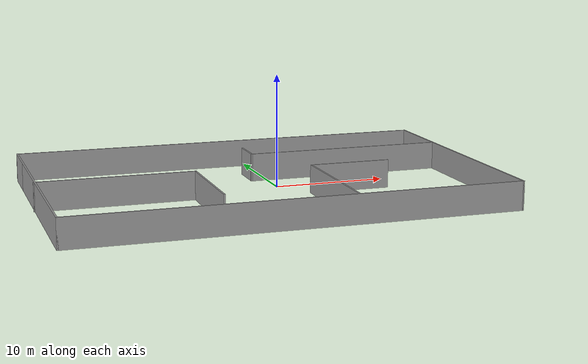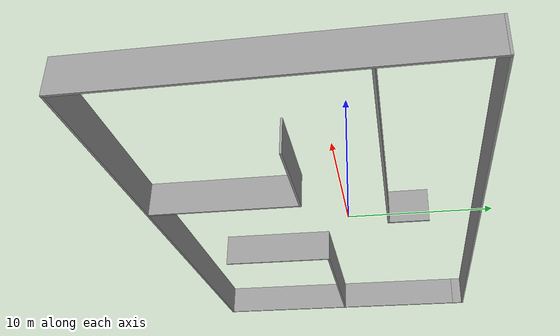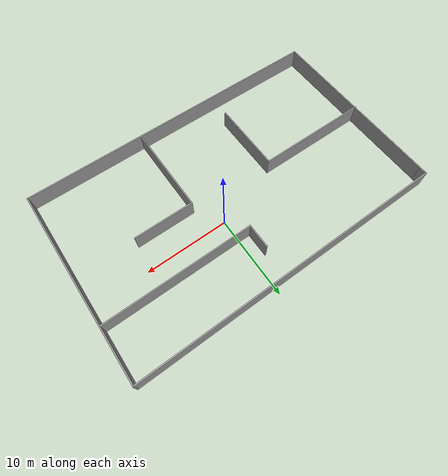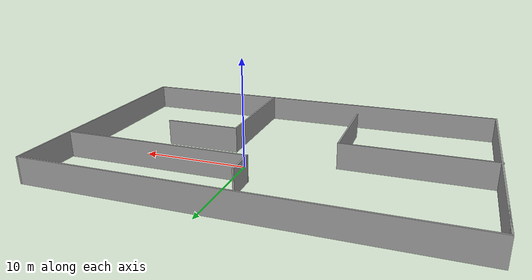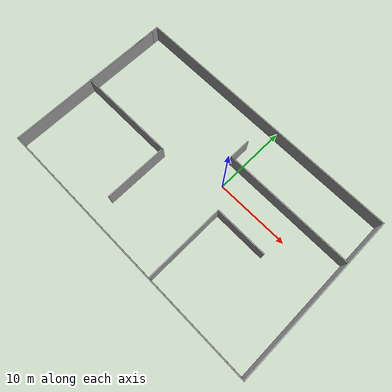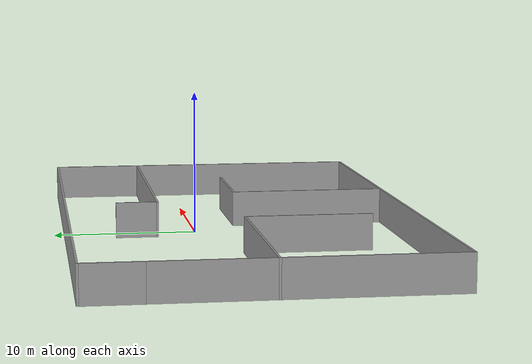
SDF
<?xml version='1.0'?>
<sdf version='1.7'>
  <model name='room'>
    <pose>-2.5625 -2.42015 0 0 -0 0</pose>
    <link name='Wall_0'>
      <collision name='Wall_0_Collision'>
        <geometry>
          <box>
            <size>22.5 0.15 2.5</size>
          </box>
        </geometry>
        <pose>0 0 1.25 0 -0 0</pose>
      </collision>
      <visual name='Wall_0_Visual'>
        <pose>0 0 1.25 0 -0 0</pose>
        <geometry>
          <box>
            <size>22.5 0.15 2.5</size>
          </box>
        </geometry>
        <material>
          <script>
            <uri>file://media/materials/scripts/gazebo.material</uri>
            <name>Gazebo/Grey</name>
          </script>
          <ambient>1 1 1 1</ambient>
        </material>
        <meta>
          <layer>0</layer>
        </meta>
      </visual>
      <pose>-19.0146 -0.5 0 0 -0 -1.5708</pose>
    </link>
    <link name='Wall_1'>
      <collision name='Wall_1_Collision'>
        <geometry>
          <box>
            <size>38.25 0.15 2.5</size>
          </box>
        </geometry>
        <pose>0 0 1.25 0 -0 0</pose>
      </collision>
      <visual name='Wall_1_Visual'>
        <pose>0 0 1.25 0 -0 0</pose>
        <geometry>
          <box>
            <size>38.25 0.15 2.5</size>
          </box>
        </geometry>
        <material>
          <script>
            <uri>file://media/materials/scripts/gazebo.material</uri>
            <name>Gazebo/Grey</name>
          </script>
          <ambient>1 1 1 1</ambient>
        </material>
        <meta>
          <layer>0</layer>
        </meta>
      </visual>
      <pose>0.035378 -11.675 0 0 -0 0</pose>
    </link>
    <link name='Wall_10'>
      <collision name='Wall_10_Collision'>
        <geometry>
          <box>
            <size>7.25 0.15 2.5</size>
          </box>
        </geometry>
        <pose>0 0 1.25 0 -0 0</pose>
      </collision>
      <visual name='Wall_10_Visual'>
        <pose>0 0 1.25 0 -0 0</pose>
        <geometry>
          <box>
            <size>7.25 0.15 2.5</size>
          </box>
        </geometry>
        <material>
          <script>
            <uri>file://media/materials/scripts/gazebo.material</uri>
            <name>Gazebo/Grey</name>
          </script>
          <ambient>1 1 1 1</ambient>
        </material>
        <meta>
          <layer>0</layer>
        </meta>
      </visual>
      <pose>8.23899 -0.692716 0 0 -0 0</pose>
    </link>
    <link name='Wall_12'>
      <collision name='Wall_12_Collision'>
        <geometry>
          <box>
            <size>18 0.15 2.5</size>
          </box>
        </geometry>
        <pose>0 0 1.25 0 -0 0</pose>
      </collision>
      <visual name='Wall_12_Visual'>
        <pose>0 0 1.25 0 -0 0</pose>
        <geometry>
          <box>
            <size>18 0.15 2.5</size>
          </box>
        </geometry>
        <material>
          <script>
            <uri>file://media/materials/scripts/gazebo.material</uri>
            <name>Gazebo/Grey</name>
          </script>
          <ambient>1 1 1 1</ambient>
        </material>
        <meta>
          <layer>0</layer>
        </meta>
      </visual>
      <pose>10.0569 5.22671 0 0 -0 3.14159</pose>
    </link>
    <link name='Wall_13'>
      <collision name='Wall_13_Collision'>
        <geometry>
          <box>
            <size>3 0.15 2.5</size>
          </box>
        </geometry>
        <pose>0 0 1.25 0 -0 0</pose>
      </collision>
      <visual name='Wall_13_Visual'>
        <pose>0 0 1.25 0 -0 0</pose>
        <geometry>
          <box>
            <size>3 0.15 2.5</size>
          </box>
        </geometry>
        <material>
          <script>
            <uri>file://media/materials/scripts/gazebo.material</uri>
            <name>Gazebo/Grey</name>
          </script>
          <ambient>1 1 1 1</ambient>
        </material>
        <meta>
          <layer>0</layer>
        </meta>
      </visual>
      <pose>1.13192 6.65171 0 0 -0 1.5708</pose>
    </link>
    <link name='Wall_2'>
      <collision name='Wall_2_Collision'>
        <geometry>
          <box>
            <size>23.5 0.15 2.5</size>
          </box>
        </geometry>
        <pose>0 0 1.25 0 -0 0</pose>
      </collision>
      <visual name='Wall_2_Visual'>
        <pose>0 0 1.25 0 -0 0</pose>
        <geometry>
          <box>
            <size>23.5 0.15 2.5</size>
          </box>
        </geometry>
        <material>
          <script>
            <uri>file://media/materials/scripts/gazebo.material</uri>
            <name>Gazebo/Grey</name>
          </script>
          <ambient>1 1 1 1</ambient>
        </material>
        <meta>
          <layer>0</layer>
        </meta>
      </visual>
      <pose>19.0854 -0 0 0 -0 1.5708</pose>
    </link>
    <link name='Wall_3'>
      <collision name='Wall_3_Collision'>
        <geometry>
          <box>
            <size>38.25 0.15 2.5</size>
          </box>
        </geometry>
        <pose>0 0 1.25 0 -0 0</pose>
      </collision>
      <visual name='Wall_3_Visual'>
        <pose>0 0 1.25 0 -0 0</pose>
        <geometry>
          <box>
            <size>38.25 0.15 2.5</size>
          </box>
        </geometry>
        <material>
          <script>
            <uri>file://media/materials/scripts/gazebo.material</uri>
            <name>Gazebo/Grey</name>
          </script>
          <ambient>1 1 1 1</ambient>
        </material>
        <meta>
          <layer>0</layer>
        </meta>
      </visual>
      <pose>0.035378 11.675 0 0 -0 3.14159</pose>
    </link>
    <link name='Wall_4'>
      <collision name='Wall_4_Collision'>
        <geometry>
          <box>
            <size>4 0.15 2.5</size>
          </box>
        </geometry>
        <pose>0 0 1.25 0 -0 0</pose>
      </collision>
      <visual name='Wall_4_Visual'>
        <pose>0 0 1.25 0 -0 0</pose>
        <geometry>
          <box>
            <size>4 0.15 2.5</size>
          </box>
        </geometry>
        <material>
          <script>
            <uri>file://media/materials/scripts/gazebo.material</uri>
            <name>Gazebo/Grey</name>
          </script>
          <ambient>1 1 1 1</ambient>
        </material>
        <meta>
          <layer>0</layer>
        </meta>
      </visual>
      <pose>-19.0146 9.75 0 0 -0 -1.5708</pose>
    </link>
    <link name='Wall_6'>
      <collision name='Wall_6_Collision'>
        <geometry>
          <box>
            <size>13.75 0.15 2.5</size>
          </box>
        </geometry>
        <pose>0 0 1.25 0 -0 0</pose>
      </collision>
      <visual name='Wall_6_Visual'>
        <pose>0 0 1.25 0 -0 0</pose>
        <geometry>
          <box>
            <size>13.75 0.15 2.5</size>
          </box>
        </geometry>
        <material>
          <script>
            <uri>file://media/materials/scripts/gazebo.material</uri>
            <name>Gazebo/Grey</name>
          </script>
          <ambient>1 1 1 1</ambient>
        </material>
        <meta>
          <layer>0</layer>
        </meta>
      </visual>
      <pose>-12.2854 -0.009316 0 0 -0 0</pose>
    </link>
    <link name='Wall_7'>
      <collision name='Wall_7_Collision'>
        <geometry>
          <box>
            <size>8.75 0.15 2.5</size>
          </box>
        </geometry>
        <pose>0 0 1.25 0 -0 0</pose>
      </collision>
      <visual name='Wall_7_Visual'>
        <pose>0 0 1.25 0 -0 0</pose>
        <geometry>
          <box>
            <size>8.75 0.15 2.5</size>
          </box>
        </geometry>
        <material>
          <script>
            <uri>file://media/materials/scripts/gazebo.material</uri>
            <name>Gazebo/Grey</name>
          </script>
          <ambient>1 1 1 1</ambient>
        </material>
        <meta>
          <layer>0</layer>
        </meta>
      </visual>
      <pose>-5.48538 -4.30932 0 0 -0 -1.5708</pose>
    </link>
    <link name='Wall_9'>
      <collision name='Wall_9_Collision'>
        <geometry>
          <box>
            <size>11 0.15 2.5</size>
          </box>
        </geometry>
        <pose>0 0 1.25 0 -0 0</pose>
      </collision>
      <visual name='Wall_9_Visual'>
        <pose>0 0 1.25 0 -0 0</pose>
        <geometry>
          <box>
            <size>11 0.15 2.5</size>
          </box>
        </geometry>
        <material>
          <script>
            <uri>file://media/materials/scripts/gazebo.material</uri>
            <name>Gazebo/Grey</name>
          </script>
          <ambient>1 1 1 1</ambient>
        </material>
        <meta>
          <layer>0</layer>
        </meta>
      </visual>
      <pose>4.68899 -6.11772 0 0 -0 1.5708</pose>
    </link>
    <static>1</static>
  </model>
</sdf>
